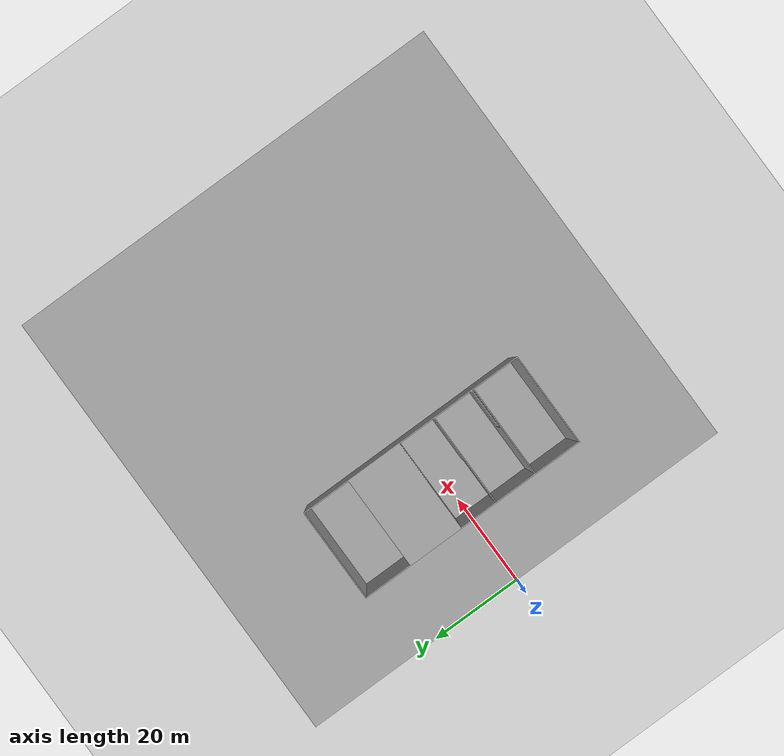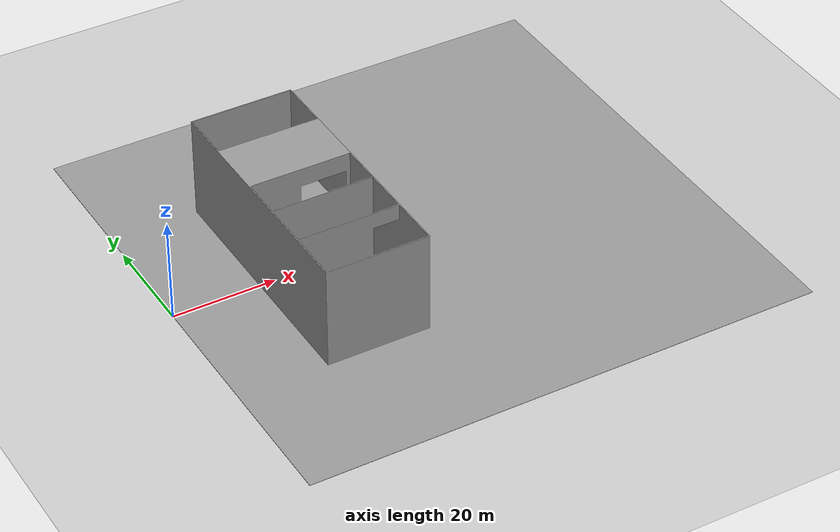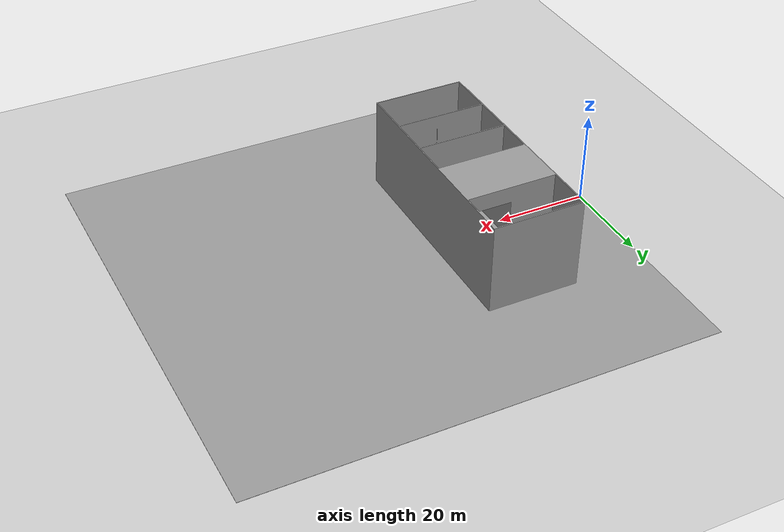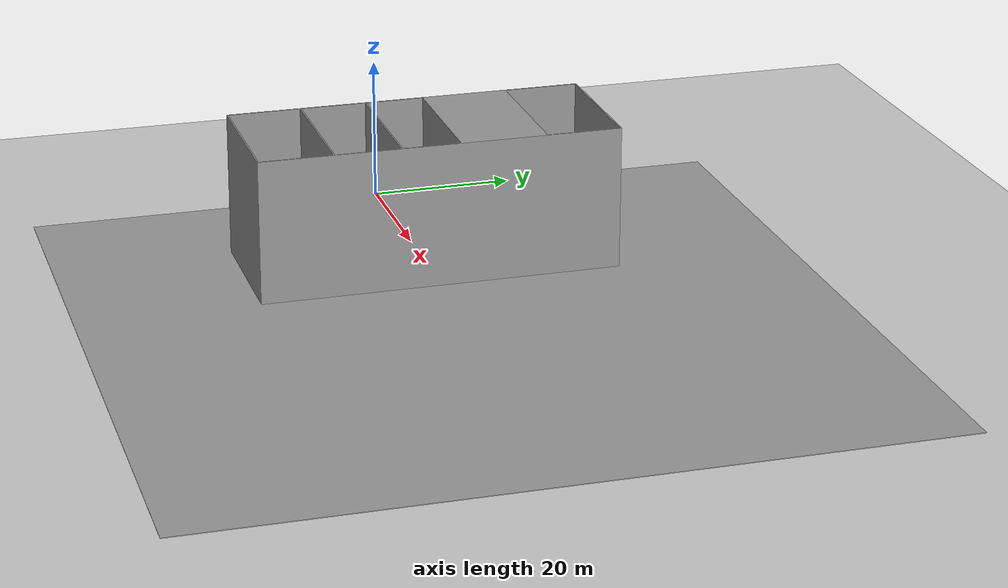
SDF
<sdf version="1.7">
 <world name="default">
  <light name="sun" type="directional">
   <pose>0 0 10 0 -0 0</pose>
   <diffuse>0.8 0.8 0.8 1</diffuse>
   <specular>0.2 0.2 0.2 1</specular>
   <attenuation>
    <range>1000</range>
    <constant>0.9</constant>
    <linear>0.01</linear>
    <quadratic>0.001</quadratic>
   </attenuation>
   <direction>-0.5 0.1 -0.9</direction>
   <spot><inner_angle>0</inner_angle><outer_angle>0</outer_angle><falloff>0</falloff></spot>
  </light>
  <model name="ground_plane">
   <static>1</static>
   <link name="link">
    <collision name="collision">
     <geometry><plane><normal>0 0 1</normal><size>100 100</size></plane></geometry>
     <surface><friction><ode><mu>100</mu><mu2>50</mu2></ode></friction></surface>
    </collision>
    <visual name="visual">
     <cast_shadows>0</cast_shadows>
     <geometry><plane><normal>0 0 1</normal><size>100 100</size></plane></geometry>
     <material>
      <script><uri>file://media/materials/scripts/gazebo.material</uri><name>Gazebo/Grey</name></script>
     </material>
    </visual>
   </link>
  </model>
  <gravity>0 0 -9.8</gravity>
  <magnetic_field>6e-06 2.3e-05 -4.2e-05</magnetic_field>
  <atmosphere type="adiabatic"/>
  <physics type="ode">
   <max_step_size>0.001</max_step_size>
   <real_time_factor>1</real_time_factor>
   <real_time_update_rate>1000</real_time_update_rate>
  </physics>
  <scene><ambient>0.4 0.4 0.4 1</ambient><background>0.7 0.7 0.7 1</background><shadows>1</shadows></scene>
  <spherical_coordinates>
   <surface_model>EARTH_WGS84</surface_model>
   <latitude_deg>0</latitude_deg>
   <longitude_deg>0</longitude_deg>
   <elevation>0</elevation>
   <heading_deg>0</heading_deg>
  </spherical_coordinates>
  <model name="slopes">
   <static>1</static>
   <link name="link_1">
    <inertial>
     <mass>1</mass>
     <inertia>
      <ixx>0.166667</ixx>
      <ixy>0</ixy>
      <ixz>0</ixz>
      <iyy>0.166667</iyy>
      <iyz>0</iyz>
      <izz>0.166667</izz>
     </inertia>
    </inertial>
    <pose>-11.5 0 0 0 0 -1.5708</pose>
    <visual name="visual">
     <geometry>
      <mesh>
       <uri>/home/tonitauler/ROS/catkin_ws/src/robots/DJI_matrice_100/m100_simulation/worlds/models/simple_maze.stl</uri>
       <scale>1 1 1</scale>
      </mesh>
     </geometry>
     <material>
      <lighting>1</lighting>
      <script><uri>file://media/materials/scripts/gazebo.material</uri><name>Gazebo/Grey</name></script>
      <shader type="pixel"/>
      <emissive>0 0 0 1</emissive>
     </material>
    </visual>
    <collision name="collision">
     <geometry>
      <mesh>
       <uri>/home/tonitauler/ROS/sim_4legged_ws/src/simulation_unitree_go1/go1_simulation/worlds/models/slopes.stl</uri>
       <scale>1 1 1</scale>
      </mesh>
     </geometry>
     <surface>
      <friction>
       <ode><mu>100</mu><mu2>50</mu2><fdir1>0 0 0</fdir1><slip1>0</slip1><slip2>0</slip2></ode>
       <torsional>
        <coefficient>1</coefficient>
        <patch_radius>0</patch_radius>
        <surface_radius>0</surface_radius>
        <use_patch_radius>1</use_patch_radius>
        <ode><slip>0</slip></ode>
       </torsional>
      </friction>
      <bounce><restitution_coefficient>0</restitution_coefficient><threshold>1e+06</threshold></bounce>
      <contact>
       <collide_without_contact>0</collide_without_contact>
       <collide_without_contact_bitmask>1</collide_without_contact_bitmask>
       <collide_bitmask>1</collide_bitmask>
       <ode>
        <soft_cfm>0</soft_cfm>
        <soft_erp>0.2</soft_erp>
        <kp>1e+13</kp>
        <kd>1</kd>
        <max_vel>0.01</max_vel>
        <min_depth>0</min_depth>
       </ode>
       <bullet>
        <split_impulse>1</split_impulse>
        <split_impulse_penetration_threshold>-0.01</split_impulse_penetration_threshold>
        <soft_cfm>0</soft_cfm>
        <soft_erp>0.2</soft_erp>
        <kp>1e+13</kp>
        <kd>1</kd>
       </bullet>
      </contact>
     </surface>
    </collision>
   </link>
   <model name="ground_plane">
    <static>1</static>
    <link name="link">
     <collision name="collision">
      <geometry><plane><normal>0 0 1</normal><size>100 100</size></plane></geometry>
      <surface>
       <contact><collide_bitmask>65535</collide_bitmask></contact>
       <friction><ode><mu>100</mu><mu2>50</mu2></ode></friction>
      </surface>
     </collision>
     <visual name="visual">
      <cast_shadows>0</cast_shadows>
      <geometry><plane><normal>0 0 1</normal><size>100 100</size></plane></geometry>
      <material>
       <script><uri>file://media/materials/scripts/gazebo.material</uri><name>Gazebo/Grey</name></script>
      </material>
     </visual>
    </link>
    <pose>11.5 0 0 0 -0 0</pose>
   </model>
   <joint name="link_1_JOINT_0" type="fixed">
    <parent>link_1</parent>
    <child>ground_plane::link</child>
    <physics>
     <ode><limit><cfm>0</cfm><erp>0.2</erp></limit><suspension><cfm>0</cfm><erp>0.2</erp></suspension></ode>
    </physics>
   </joint>
   <static>0</static>
   <pose>38.5 -0 -0 0 -0 0</pose>
  </model>
 </world>
</sdf>
